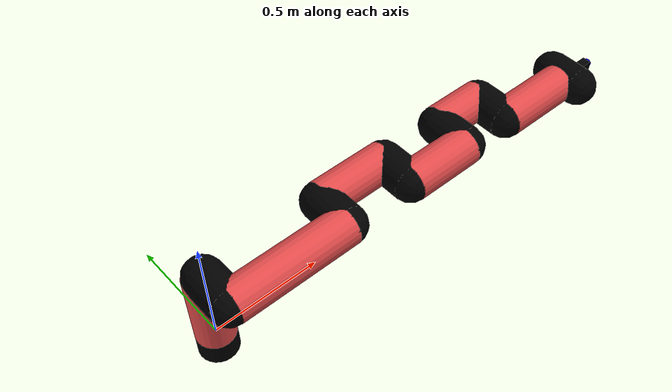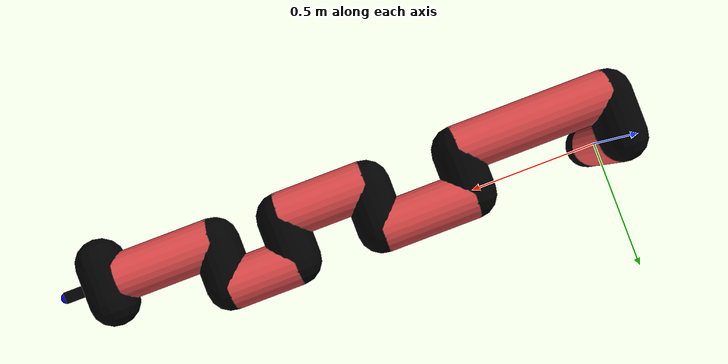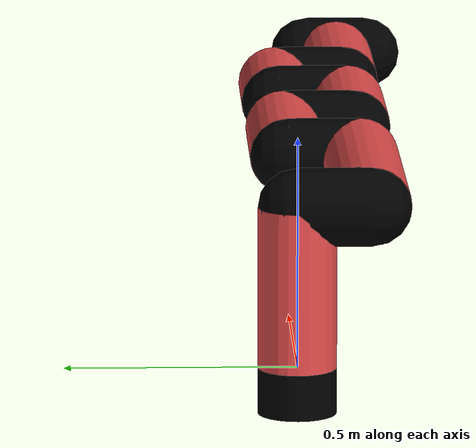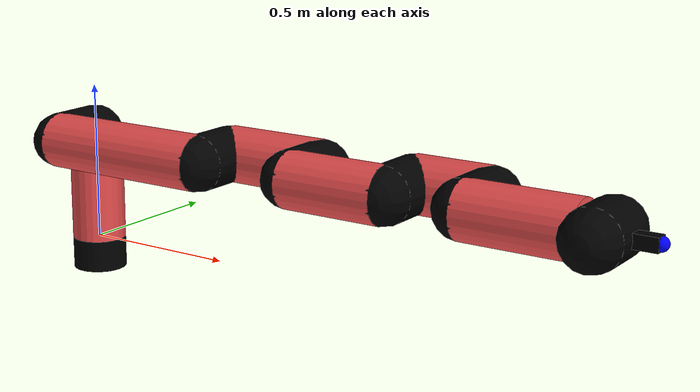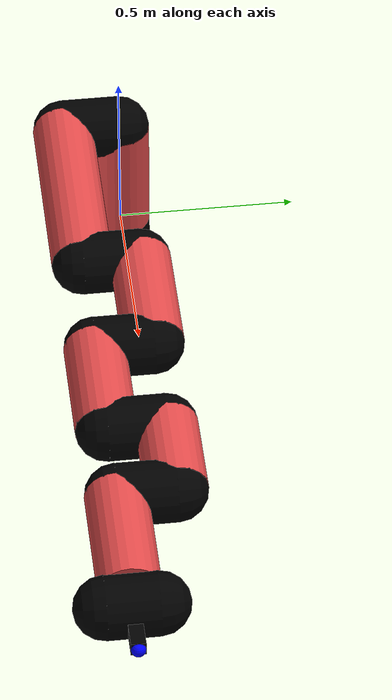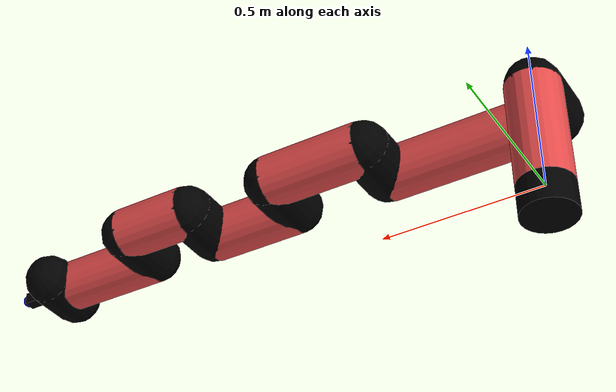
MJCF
<mujoco model="manipulator">
		<compiler angle="degree" coordinate="local" inertiafromgeom="auto" meshdir="meshes/"/>
		<option gravity="0 0 0" integrator="RK4" iterations="30" timestep="0.01"/>

		<default>
		<joint armature="1" limited="true" stiffness="10" damping="15" frictionloss="5.0"/>
		<geom conaffinity="1" condim="3" contype="1" friction=".5 .1 .1" margin="0.002"/>
		<motor ctrllimited="true"/>
		<position ctrllimited="true"/>
		</default>

		<asset>
		<texture builtin="gradient" height="100" rgb1="1.0 1.0 1.0" rgb2="1.0 1.0 1.0" type="skybox" width="100"/>
		<texture builtin="flat" height="32" name="arm_tex" rgb1="0.9 0.3 0.3" type="2d" width="32"/>
		<texture builtin="flat" height="32" name="gripper_tex" rgb1="0.0 0.0 0.0" type="cube" width="32"/>

		<material name="arm_mat" shininess="0.1" specular="0.1" texture="arm_tex"/>
		<material name="gripper_mat" shininess="1" specular="1" texture="gripper_tex"/>
		</asset>

		<worldbody>
		<light cutoff="45" diffuse=".8 .8 .8" dir="0 0.16 -1" directional="false" name="light" pos="0 -2.0 8.0" specular="0.3 0.3 0.3"/>

		<body name="base_link" pos="0 0 -0.1">
		<geom fromto="0 0 0 0 0 0.1" material="arm_mat" name="base_link" rgba="0.0 0.0 0.0 1" size="0.085" type="cylinder"/>
		</body>

		<body name="l1" pos="0 0 0">
<geom fromto="0 0 0 0 0 0.35" material="arm_mat" name="l1" rgba="0.9 0.3 0.3 1" size="0.085" type="cylinder"/>
<geom fromto="0 0 0.35 0 -0.16 0.35" material="arm_mat" name="l1_ex" rgba="0.0 0.0 0.0 1" size="0.085" type="capsule"/>
<joint axis="0 0 1" name="j1" pos="0 0 0" range="-90 90" damping="37.32" frictionloss="7.67"/>

<body name="l2" pos="0 -0.16 0.35">
<geom fromto="0 0 0 0.55 0 0" material="arm_mat" name="l2" rgba="0.9 0.3 0.3 1" size="0.085" type="cylinder"/>
<geom fromto="0.55 0 0 0.55 0.16 0" material="arm_mat" name="l2_ex" rgba="0.0 0.0 0.0 1" size="0.085" type="capsule"/>
<joint axis="0.0 1.0 0.0" name="j2" pos="0 0 0" range="-90 60" damping="29.84" frictionloss="12.22"/>

<body name="l3" pos="0.55 0.16 0">
<geom fromto="0 0 0 0.33 0 0" material="arm_mat" name="l3" rgba="0.9 0.3 0.3 1" size="0.085" type="cylinder"/>
<geom fromto="0.33 0 0 0.33 -0.16 0" material="arm_mat" name="l3_ex" rgba="0.0 0.0 0.0 1" size="0.085" type="capsule"/>
<joint axis="0.0 1.0 0.0" name="j3" pos="0 0 0" range="-30 60" damping="33.26" frictionloss="10.83"/>

<body name="l4" pos="0.33 -0.16 0">
<geom fromto="0 0 0 0.31 0 0" material="arm_mat" name="l4" rgba="0.9 0.3 0.3 1" size="0.085" type="cylinder"/>
<geom fromto="0.31 0 0 0.31 0.16 0" material="arm_mat" name="l4_ex" rgba="0.0 0.0 0.0 1" size="0.085" type="capsule"/>
<joint axis="0.0 1.0 0.0" name="j4" pos="0 0 0" range="-30 60" damping="29.04" frictionloss="8.72"/>

<body name="l5" pos="0.31 0.16 0">
<geom fromto="0 0 0 0.24 0 0" material="arm_mat" name="l5" rgba="0.9 0.3 0.3 1" size="0.085" type="cylinder"/>
<geom fromto="0.24 0 0 0.24 -0.16 0" material="arm_mat" name="l5_ex" rgba="0.0 0.0 0.0 1" size="0.085" type="capsule"/>
<joint axis="0.0 1.0 0.0" name="j5" pos="0 0 0" range="-30 60" damping="32.61" frictionloss="8.77"/>

<body name="l6" pos="0.24 -0.16 0">
<geom fromto="0 0 0 0.34 0 0" material="arm_mat" name="l6" rgba="0.9 0.3 0.3 1" size="0.085" type="cylinder"/>
<joint axis="0.0 1.0 0.0" name="j6" pos="0 0 0" range="-30 60" damping="27.58" frictionloss="12.09"/>

<body name="gripper" pos="0.34 0 0">
<geom fromto="0.05 -0.07 0 0.05 0.07 0" material="gripper_mat" name="gripper" rgba="0.0 0.0 0.0 1" size="0.085" type="capsule"/><joint axis="1 0 0" name="j7" pos="0 0 0" range="-90 90" damping="15" frictionloss="5.0"/><body name="finger" pos="0.1 0 0">
<geom fromto="0 0.0 0 0.1 0.0 0" material="gripper_mat" name="finger" rgba="0.0 0.0 0.0 1" size="0.020 0.06 0.06" type="box"/>
</body>
<site name="current" pos="0.2 0. 0.0" rgba="0. 0. 1.0 1" size="0.02" type="sphere"/>
</body>
</body>
</body>
</body>
</body>
</body>
</body>
</worldbody>
<actuator>
<motor ctrllimited="true" ctrlrange="-1.0 1.0" joint="j1" gear="94.77"/>
<motor ctrllimited="true" ctrlrange="-1.0 1.0" joint="j2" gear="92.81"/>
<motor ctrllimited="true" ctrlrange="-1.0 1.0" joint="j3" gear="98.22"/>
<motor ctrllimited="true" ctrlrange="-1.0 1.0" joint="j4" gear="81.62"/>
<motor ctrllimited="true" ctrlrange="-1.0 1.0" joint="j5" gear="87.28"/>
<motor ctrllimited="true" ctrlrange="-1.0 1.0" joint="j6" gear="75.26"/>
<motor ctrllimited="true" ctrlrange="-1.0 1.0" joint="j7" gear="80"/>
</actuator>
</mujoco>
